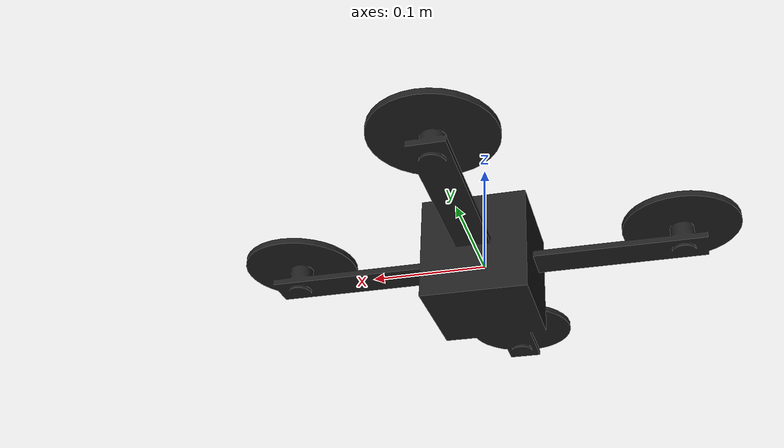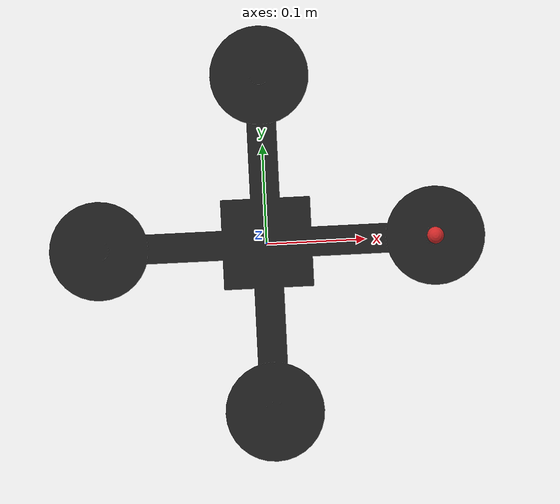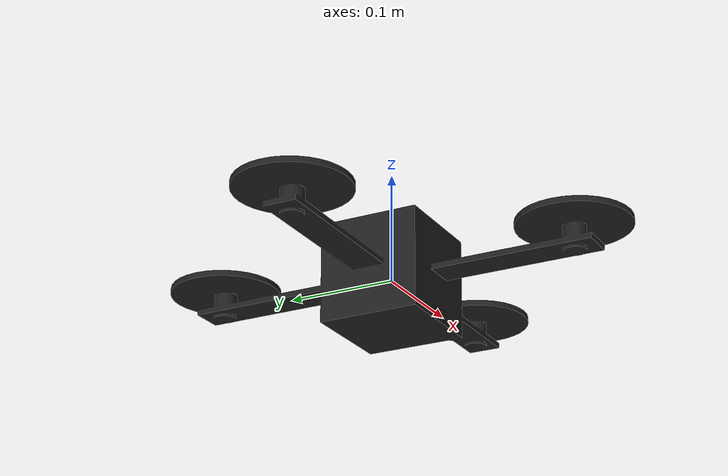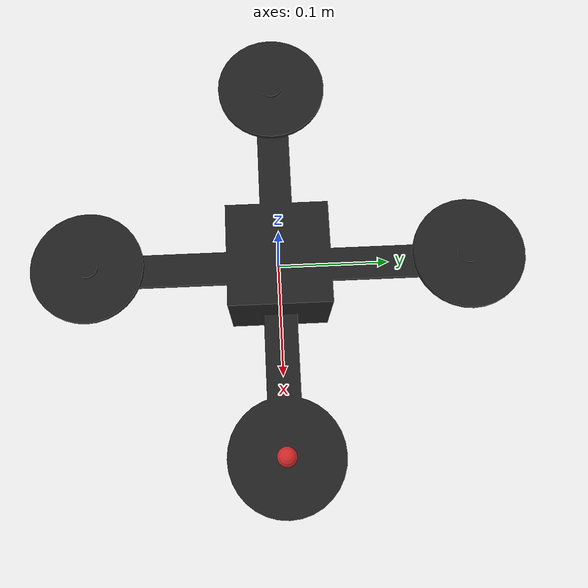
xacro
<?xml version="1.0"?>

<robot name="quadrotor_model"
  xmlns:model="http://playerstage.sourceforge.net/gazebo/xmlschema/#model"
  xmlns:sensor="http://playerstage.sourceforge.net/gazebo/xmlschema/#sensor"
  xmlns:body="http://playerstage.sourceforge.net/gazebo/xmlschema/#body"
  xmlns:geom="http://playerstage.sourceforge.net/gazebo/xmlschema/#geom"
  xmlns:joint="http://playerstage.sourceforge.net/gazebo/xmlschema/#joint"
  xmlns:xacro="http://www.ros.org/wiki/xacro"
  xmlns:controller="http://playerstage.sourceforge.net/gazebo/xmlschema/#controller"
  >

<xacro:macro name="set_materials" params="link color">
    <gazebo reference="${link}">
        <material>Gazebo/${color}</material>
    </gazebo>
</xacro:macro>

<xacro:macro name="motor" params="id origin">
    <link name="motor${id}">
        <inertial>
            <origin xyz="${origin}" />
	    <mass value="0.05" />
	    <inertia  ixx="0.0" ixy="0.0"  ixz="0.0"  iyy="0.0"  iyz="0.0"  izz="0.0" />
        </inertial>
        <visual>
            <origin xyz="${origin}" />
            <geometry>
                <cylinder length="0.03" radius="0.02" />
            </geometry>
        </visual>
        <collision>
            <origin xyz="${origin}" />
            <geometry>
                <cylinder length="0.03" radius="0.02" />
            </geometry>
        </collision>
    </link>
</xacro:macro>

<xacro:macro name="rotor" params="id origin">
    <link name="rotor${id}">
        <inertial>
            <origin xyz="${origin}" />
	    <mass value="0.01" />
            <inertia  ixx="0.0" ixy="0.0"  ixz="0.0"  iyy="0.0"  iyz="0.0"  izz="0.0" />
        </inertial>
        <visual>
            <origin xyz="${origin}" />
            <geometry>

                <cylinder length="0.005" radius="0.1" />
            </geometry>
        </visual>
        <collision>
            <origin xyz="${origin}" />
            <geometry>
                <cylinder length="0.005" radius="0.1" />
            </geometry>
        </collision>
    </link>
</xacro:macro>

<xacro:macro name="join" params="j1 j2">
    <joint name="${j1}_to_${j2}" type="fixed">
        <parent link="${j1}" />
        <child link="${j2}" />
        <origin xyz="0 0 0"/>
    </joint>
</xacro:macro>

<xacro:macro name="quadrotor">
    <!-- MATERIALS -->
    <xacro:set_materials link="chassis_body" color="Black" />
    <xacro:set_materials link="arm1" color="Black" />
    <xacro:set_materials link="arm2" color="Black" />
    <xacro:set_materials link="motor1" color="Red" />
    <xacro:set_materials link="motor2" color="Blue" />
    <xacro:set_materials link="motor3" color="Blue" />
    <xacro:set_materials link="motor4" color="Blue" />

    <link name="chassis_body">
        <inertial>
          <origin xyz="0 0 0" />
          <mass value="0.64" />
	  <inertia  ixx="0.02" ixy="0.0"  ixz="0.0"  iyy="0.02"  iyz="0.0"  izz="0.04" />
        </inertial>
        <visual>
	    <geometry>

                <mesh filename="package://quadrotor_obstacle_avoidance/mesh/quadrotorblender.stl" scale="0.5 0.5 0.5"/>
            </geometry>
        </visual>
        <collision>
          <geometry>
		<box size="0.09 0.09 0.09" />
          </geometry>
        </collision>
    </link>

<!-- CONTROLLER-->
    <gazebo>
	<controller:feedback_linearization name="feedback_linearization" plugin="libfeedbacklinearization.so">
            <alwaysOn>true</alwaysOn>
            <update>1000</update>
            <updateRate>1000.0</updateRate>
        </controller:feedback_linearization>

        <canonicalBody>chassis_body</canonicalBody>
    </gazebo>

</xacro:macro>

<xacro:quadrotor />

<include filename="$(find quadrotor_obstacle_avoidance)/urdf/quad_hokuyo_laser.xacro" />

<xacro:quad_hokuyo_laser parent="chassis_body" />

</robot>

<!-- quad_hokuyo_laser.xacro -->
<robot
    xmlns:sensor="http://playerstage.sourceforge.net/gazebo/xmlschema/#sensor"
    xmlns:controller="http://playerstage.sourceforge.net/gazebo/xmlschema/#controller"
    xmlns:interface="http://playerstage.sourceforge.net/gazebo/xmlschema/#interface">

    <macro name="quad_hokuyo_laser" params="parent">
        <joint name="laser_base_mount_joint" type="fixed">
            <origin xyz="0 0 0.045" rpy="0 0 0" />
	    <axis xyz="0 1 0" />
            <parent link="${parent}"/>
            <child link="base_scan_link"/> <!--laser_base_link-->
        </joint>

        <link name="base_scan_link" type="laser">
            <inertial>
                <mass value="0.01"/>
                <origin xyz="0 0 0"/>
                <inertia ixx="0.1" ixy="0" ixz="0" iyy="0.1" iyz="0" izz="0.1"/>
            </inertial>

            <visual>
                <origin rpy="0 0 0" xyz="0.17 0 -0.025"/>
                <geometry>
		    <sphere radius="0.01"/>
                </geometry>
            </visual>

            <collision>
                <origin rpy="0 0 0" xyz="0 0 0"/>
                <geometry>
                    <cylinder radius="0.0229" length="0.028"/>
                </geometry>
            </collision>
        </link>

        <gazebo reference="base_scan_link">
            <sensor:ray name="laser">
		<alwaysActive>true</alwaysActive>
                <rayCount>45</rayCount>
                <rangeCount>45</rangeCount>
                <laserCount>1</laserCount>

                <origin>0.0 0.0 0.035</origin>
                <displayRays>false</displayRays>

                <minAngle>-180</minAngle>
                <maxAngle> 180</maxAngle>

		<verticalMinAngle>-90</verticalMinAngle>
		<verticalMaxAngle>90</verticalMaxAngle>

		<verticalRayCount>90</verticalRayCount>
		<verticalRangeCount>90</verticalRangeCount>

                <minRange>1</minRange>
                <maxRange>4.0</maxRange>
                <resRange>0.001</resRange>
                <updateRate>10.0</updateRate>

                <controller:gazebo_ros_block_laser name="ray_block_controller" plugin="libgazebo_ros_block_laser.so">
                    <gaussianNoise>0.005</gaussianNoise>
                    <alwaysOn>true</alwaysOn>
                    <updateRate>10.0</updateRate>
                    <topicName>full_cloud</topicName>
                    <frameName>base_scan_link</frameName>
                    <interface:laser name="gazebo_ros_base_scan_link_iface"/>
                </controller:gazebo_ros_block_laser>
            </sensor:ray>
        </gazebo>

        <gazebo reference="laser_base_link">
            <material>Erratic/Red</material>
        </gazebo>

        <gazebo reference="base_scan_link">
            <material>Erratic/Red</material>
        </gazebo>
    </macro>

</robot>
